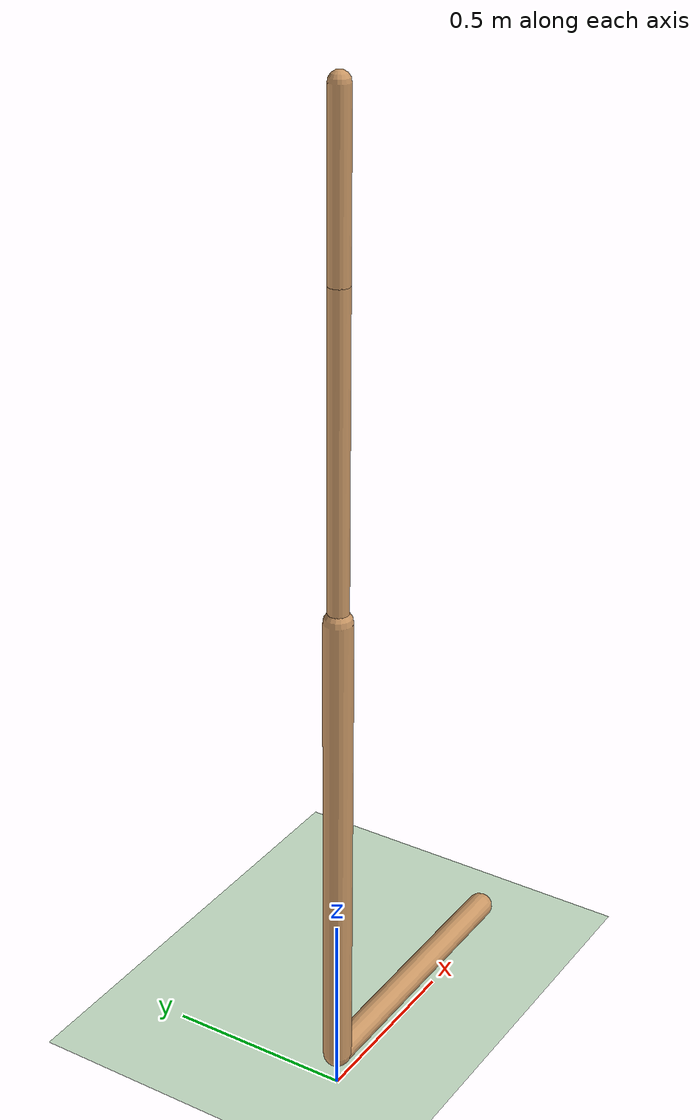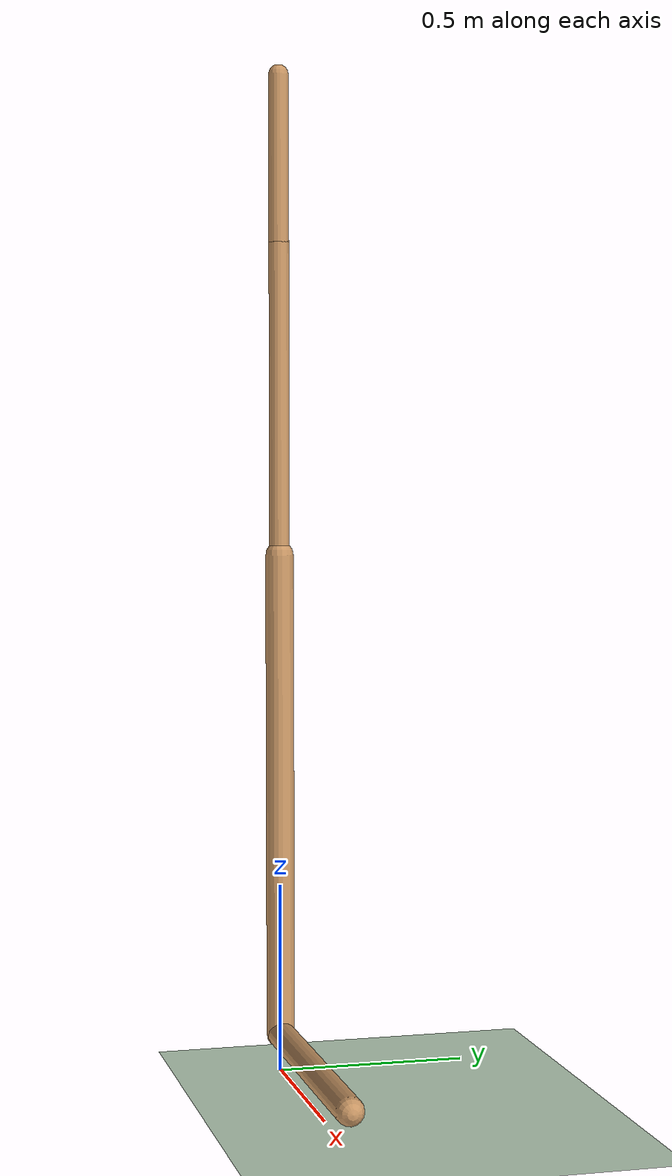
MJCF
<mujoco model="walker2d">
  <compiler angle="degree" inertiafromgeom="true" />
  <default>
    <joint armature="0.01" damping=".1" limited="true" />
    <geom conaffinity="0" condim="3" contype="1" density="1000" friction=".7 .1 .1" rgba="0.8 0.6 .4 1" />
  </default>
  <option integrator="RK4" timestep="0.002" />
  <worldbody>
    <light cutoff="100" diffuse="1 1 1" dir="-0 0 -1.3" directional="true" exponent="1" pos="0 0 1.3" specular=".1 .1 .1" />
    <geom conaffinity="1" condim="3" name="floor" pos="0 0 0" rgba="0.8 0.9 0.8 1" size="40 40 40" type="plane" material="MatPlane" />
    <body name="torso" pos="0 0 2.4208487033843995">
      <camera name="track" mode="trackcom" pos="0 -5 -1.25" xyaxes="1 0 0 0 0 1" />
      <joint armature="0" axis="1 0 0" damping="0" limited="false" name="rootx" pos="0 0 -1.25" stiffness="0" type="slide" />
      <joint armature="0" axis="0 0 1" damping="0" limited="false" name="rootz" pos="0 0 -1.25" ref="1.25" stiffness="0" type="slide" />
      <joint armature="0" axis="0 1 0" damping="0" limited="false" name="rooty" pos="0 0 0" stiffness="0" type="hinge" />
      <geom friction="0.9" name="torso_geom" size="0.026520727202296257 0.21760928630828857" type="capsule" />
      <body name="thigh" pos="0 0 -0.21760928630828857">
        <joint axis="0 -1 0" name="thigh_joint" pos="0 0 0" range="-150 0" type="hinge" />
        <site name="torso_thigh_site" pos="0 0 0" size="0.01" type="sphere" rgba="1 0 0 0.5" />
        <geom friction="0.9" pos="0 0 -0.41093772649765015" name="thigh_geom" size="0.026576891541481018 0.41093772649765015" type="capsule" />
        <body name="leg" pos="0 0 -1.4625574350357056">
          <joint axis="0 -1 0" name="leg_joint" pos="0 0 0.6406819820404053" range="-150 0" type="hinge" />
          <site name="thigh_leg_site" pos="0 0 0.25" size="0.01" type="sphere" rgba="1 0 0 0.5" />
          <geom friction="0.9" name="leg_geom" size="0.03717689961194992 0.6406819820404053" type="capsule" />
          <body name="foot" pos="0.7665150165557861 0 -0.7406819820404053">
            <joint axis="0 -1 0" name="foot_joint" pos="-0.7665150165557861 0 0.1" range="-45 45" type="hinge" />
            <site name="leg_foot_site" pos="-0.2 0 0.1" size="0.01" type="sphere" rgba="1 0 0 0.5" />
            <geom friction="0.9" pos="-0.38325750827789307 0 0.1" quat="0.70710678118654757 0 -0.70710678118654746 0" name="foot_geom" size="0.03570864349603653 0.38325750827789307" type="capsule" />
          </body>
        </body>
      </body>

      <body name="thigh_left" pos="0 0 -0.21760928630828857">
        <joint axis="0 -1 0" name="thigh_left_joint" pos="0 0 0" range="-150 0" type="hinge" />
        <site name="torso_thigh_left_site" pos="0 0 0" size="0.01" type="sphere" rgba="1 0 0 0.5" />
        <geom friction="0.9" name="thigh_left_geom" rgba=".7 .3 .6 1" size="0.026576891541481018 0.41093772649765015" pos="0 0 -0.41093772649765015" type="capsule" />
        <body name="leg_left" pos="0 0 -1.4625574350357056">
          <joint axis="0 -1 0" name="leg_left_joint" pos="0 0 0.6406819820404053" range="-150 0" type="hinge" />
          <site name="thigh_leg_left_site" pos="0 0 0.25" size="0.01" type="sphere" rgba="1 0 0 0.5" />
          <geom friction="0.9" name="leg_left_geom" rgba=".7 .3 .6 1" size="0.03717689961194992 0.6406819820404053" type="capsule" />
          <body name="foot_left" pos="0.7665150165557861 0 -0.7406819820404053">
            <joint axis="0 -1 0" name="foot_left_joint" pos="-0.7665150165557861 0 0.1" range="-45 45" type="hinge" />
            <site name="leg_foot_left_site" pos="-0.2 0 0.1" size="0.01" type="sphere" rgba="1 0 0 0.5" />
            <geom friction="1.9" name="foot_left_geom" rgba=".7 .3 .6 1" size="0.03570864349603653 0.38325750827789307" pos="-0.38325750827789307 0 0.1" type="capsule" quat="0.70710678118654757 0 -0.70710678118654746 0" />
          </body>
        </body>
      </body>
    </body>
  </worldbody>
  <actuator>

    <motor ctrllimited="true" ctrlrange="-1.0 1.0" gear="51.60144403408721" joint="thigh_joint" />
    <motor ctrllimited="true" ctrlrange="-1.0 1.0" gear="221.37514393347425" joint="leg_joint" />
    <motor ctrllimited="true" ctrlrange="-1.0 1.0" gear="135.74844890269128" joint="foot_joint" />
    <motor ctrllimited="true" ctrlrange="-1.0 1.0" gear="51.60144403408721" joint="thigh_left_joint" />
    <motor ctrllimited="true" ctrlrange="-1.0 1.0" gear="221.37514393347425" joint="leg_left_joint" />
    <motor ctrllimited="true" ctrlrange="-1.0 1.0" gear="135.74844890269128" joint="foot_left_joint" />

  </actuator>
    <asset>
        <texture type="skybox" builtin="gradient" rgb1=".4 .5 .6" rgb2="0 0 0" width="100" height="100" />
        <texture builtin="flat" height="1278" mark="cross" markrgb="1 1 1" name="texgeom" random="0.01" rgb1="0.8 0.6 0.4" rgb2="0.8 0.6 0.4" type="cube" width="127" />
        <texture builtin="checker" height="100" name="texplane" rgb1="0 0 0" rgb2="0.8 0.8 0.8" type="2d" width="100" />
        <material name="MatPlane" reflectance="0.5" shininess="1" specular="1" texrepeat="60 60" texture="texplane" />
        <material name="geom" texture="texgeom" texuniform="true" />
    </asset>

  <sensor>
    <force site="torso_thigh_site" name="torso_thigh_sensor" />
    <force site="thigh_leg_site" name="thigh_leg_sensor" />
    <force site="leg_foot_site" name="leg_foot_sensor" />
    <force site="torso_thigh_left_site" name="torso_thigh_left_sensor" />
    <force site="thigh_leg_left_site" name="thigh_leg_left_sensor" />
    <force site="leg_foot_left_site" name="leg_foot_left_sensor" />
  </sensor>
</mujoco>
